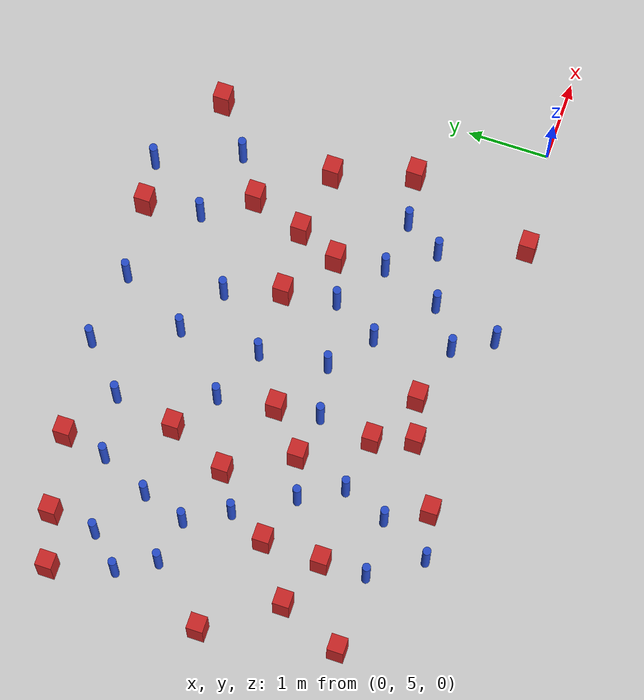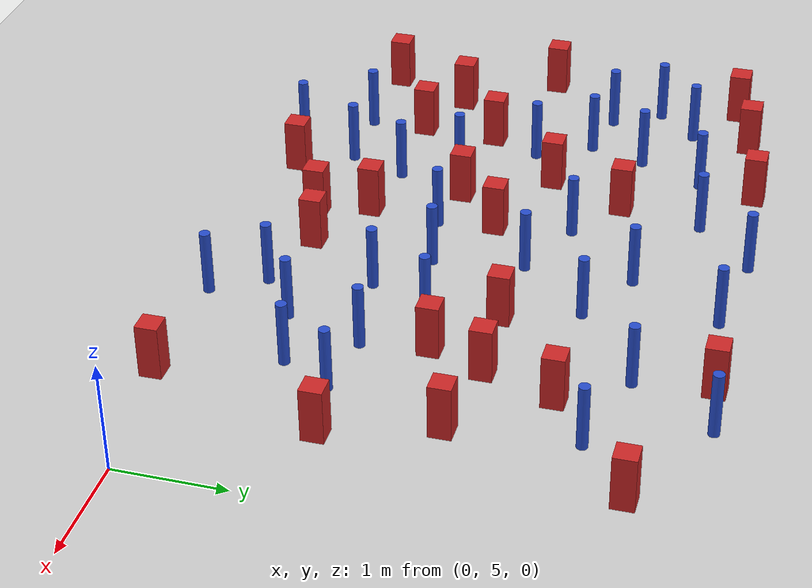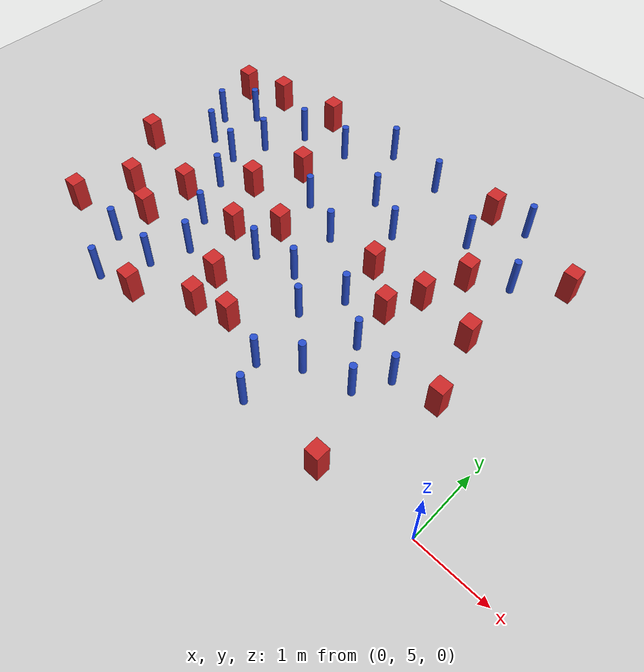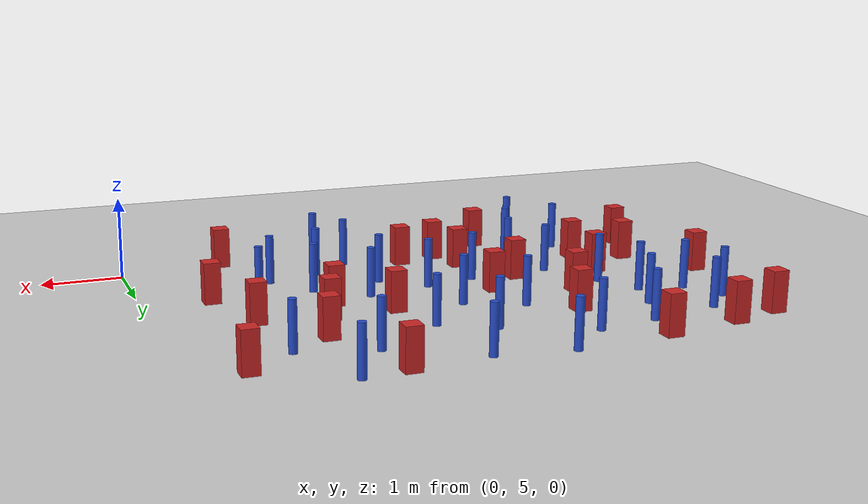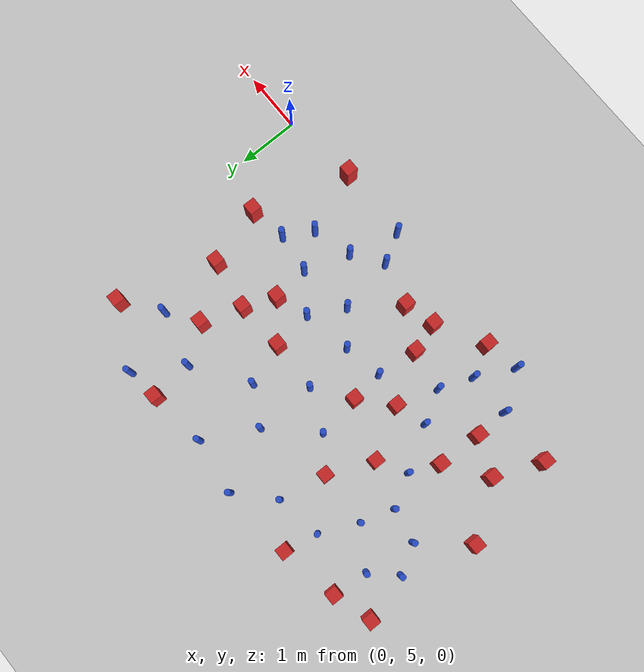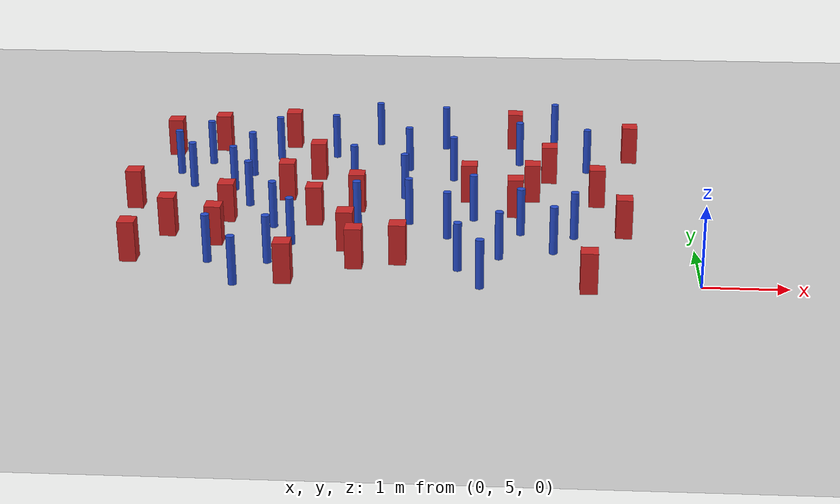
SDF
<sdf version="1.6">
 <world name="default">
  <model name="ground_plane">
   <static>1</static>
   <link name="link">
    <collision name="collision">
     <geometry><plane><normal>0 0 1</normal><size>100 100</size></plane></geometry>
     <surface><friction><ode><mu>100</mu><mu2>50</mu2></ode></friction></surface>
    </collision>
    <visual name="visual">
     <cast_shadows>0</cast_shadows>
     <geometry><plane><normal>0 0 1</normal><size>100 100</size></plane></geometry>
     <material>
      <ambient>1.0 1.0 1.0 1.0</ambient>
      <diffuse>0.8 0.8 0.8 1.0</diffuse>
      <specular>0.01 0.01 0.01 1.000000</specular>
     </material>
    </visual>
   </link>
  </model>
  <model name="square_post_obstacle4">
   <static>true</static>
   <pose>-1.7228530405 8.17220741166 1.91545236811e-07 -7.35059704564e-06 1.12565212e-07 2.39332434364e-05</pose>
   <link name="link">
    <pose>0 0 0.25 0 -0 0</pose>
    <inertial>
     <mass>100</mass>
     <inertia>
      <ixx>0.166667</ixx>
      <ixy>0</ixy>
      <ixz>0</ixz>
      <iyy>0.166667</iyy>
      <iyz>0</iyz>
      <izz>0.166667</izz>
     </inertia>
    </inertial>
    <collision name="collision"><geometry><box><size>.2 .2 .5</size></box></geometry></collision>
    <visual name="visual">
     <geometry><box><size>.2 .2 .5</size></box></geometry>
     <material>
      <script><name>Gazebo/Red</name><uri>file://media/materials/scripts/gazebo.material</uri></script>
     </material>
    </visual>
   </link>
  </model>
  <model name="pole_obstacle17">
   <static>true</static>
   <pose>-3.45545630183 6.66428810305 7.38925637345e-09 -8.47170692794e-08 1.24976764468e-08 -1.7451309304e-07</pose>
   <link name="link">
    <pose>0 0 0.3 0 -0 0</pose>
    <inertial>
     <mass>1</mass>
     <inertia><ixx>0.145833</ixx><ixy>0</ixy><ixz>0</ixz><iyy>0.145833</iyy><iyz>0</iyz><izz>0.125</izz></inertia>
    </inertial>
    <collision name="collision">
     <geometry><cylinder><radius>0.05</radius><length>.6</length></cylinder></geometry>
    </collision>
    <visual name="visual">
     <geometry><cylinder><radius>0.05</radius><length>.6</length></cylinder></geometry>
     <material>
      <script><name>Gazebo/Blue</name><uri>file://media/materials/scripts/gazebo.material</uri></script>
     </material>
    </visual>
   </link>
  </model>
  <model name="square_post_obstacle13">
   <static>true</static>
   <pose>-6.81584707708 8.96019248602 1.91545236811e-07 -7.35059704564e-06 1.12565212e-07 2.39332434364e-05</pose>
   <link name="link">
    <pose>0 0 0.25 0 -0 0</pose>
    <inertial>
     <mass>100</mass>
     <inertia>
      <ixx>0.166667</ixx>
      <ixy>0</ixy>
      <ixz>0</ixz>
      <iyy>0.166667</iyy>
      <iyz>0</iyz>
      <izz>0.166667</izz>
     </inertia>
    </inertial>
    <collision name="collision"><geometry><box><size>.2 .2 .5</size></box></geometry></collision>
    <visual name="visual">
     <geometry><box><size>.2 .2 .5</size></box></geometry>
     <material>
      <script><name>Gazebo/Red</name><uri>file://media/materials/scripts/gazebo.material</uri></script>
     </material>
    </visual>
   </link>
  </model>
  <model name="pole_obstacle26">
   <static>true</static>
   <pose>-1.42459127281 6.32206746466 7.38925637345e-09 -8.47170692799e-08 1.24976765033e-08 -1.74513093018e-07</pose>
   <link name="link">
    <pose>0 0 0.3 0 -0 0</pose>
    <inertial>
     <mass>1</mass>
     <inertia><ixx>0.145833</ixx><ixy>0</ixy><ixz>0</ixz><iyy>0.145833</iyy><iyz>0</iyz><izz>0.125</izz></inertia>
    </inertial>
    <collision name="collision">
     <geometry><cylinder><radius>0.05</radius><length>.6</length></cylinder></geometry>
    </collision>
    <visual name="visual">
     <geometry><cylinder><radius>0.05</radius><length>.6</length></cylinder></geometry>
     <material>
      <script><name>Gazebo/Blue</name><uri>file://media/materials/scripts/gazebo.material</uri></script>
     </material>
    </visual>
   </link>
  </model>
  <model name="square_post_obstacle19">
   <static>true</static>
   <pose>-0.821396344121 6.42643061462 1.91545236811e-07 -7.35059704564e-06 1.12565212e-07 2.39332434364e-05</pose>
   <link name="link">
    <pose>0 0 0.25 0 -0 0</pose>
    <inertial>
     <mass>100</mass>
     <inertia>
      <ixx>0.166667</ixx>
      <ixy>0</ixy>
      <ixz>0</ixz>
      <iyy>0.166667</iyy>
      <iyz>0</iyz>
      <izz>0.166667</izz>
     </inertia>
    </inertial>
    <collision name="collision"><geometry><box><size>.2 .2 .5</size></box></geometry></collision>
    <visual name="visual">
     <geometry><box><size>.2 .2 .5</size></box></geometry>
     <material>
      <script><name>Gazebo/Red</name><uri>file://media/materials/scripts/gazebo.material</uri></script>
     </material>
    </visual>
   </link>
  </model>
  <model name="square_post_obstacle28">
   <static>true</static>
   <pose>-3.50459496953 5.5277414915 1.91545236811e-07 -7.35059704564e-06 1.12565212e-07 2.39332434364e-05</pose>
   <link name="link">
    <pose>0 0 0.25 0 -0 0</pose>
    <inertial>
     <mass>100</mass>
     <inertia>
      <ixx>0.166667</ixx>
      <ixy>0</ixy>
      <ixz>0</ixz>
      <iyy>0.166667</iyy>
      <iyz>0</iyz>
      <izz>0.166667</izz>
     </inertia>
    </inertial>
    <collision name="collision"><geometry><box><size>.2 .2 .5</size></box></geometry></collision>
    <visual name="visual">
     <geometry><box><size>.2 .2 .5</size></box></geometry>
     <material>
      <script><name>Gazebo/Red</name><uri>file://media/materials/scripts/gazebo.material</uri></script>
     </material>
    </visual>
   </link>
  </model>
  <model name="pole_obstacle33">
   <static>true</static>
   <pose>-2.66230238334 6.81950726783 7.38925637345e-09 -8.47170692798e-08 1.24976765033e-08 -1.74513093019e-07</pose>
   <link name="link">
    <pose>0 0 0.3 0 -0 0</pose>
    <inertial>
     <mass>1</mass>
     <inertia><ixx>0.145833</ixx><ixy>0</ixy><ixz>0</ixz><iyy>0.145833</iyy><iyz>0</iyz><izz>0.125</izz></inertia>
    </inertial>
    <collision name="collision">
     <geometry><cylinder><radius>0.05</radius><length>.6</length></cylinder></geometry>
    </collision>
    <visual name="visual">
     <geometry><cylinder><radius>0.05</radius><length>.6</length></cylinder></geometry>
     <material>
      <script><name>Gazebo/Blue</name><uri>file://media/materials/scripts/gazebo.material</uri></script>
     </material>
    </visual>
   </link>
  </model>
  <model name="pole_obstacle38">
   <static>true</static>
   <pose>-5.52483982158 7.1526593645 7.38925637345e-09 -8.47170692796e-08 1.24976764786e-08 -1.74513093032e-07</pose>
   <link name="link">
    <pose>0 0 0.3 0 -0 0</pose>
    <inertial>
     <mass>1</mass>
     <inertia><ixx>0.145833</ixx><ixy>0</ixy><ixz>0</ixz><iyy>0.145833</iyy><iyz>0</iyz><izz>0.125</izz></inertia>
    </inertial>
    <collision name="collision">
     <geometry><cylinder><radius>0.05</radius><length>.6</length></cylinder></geometry>
    </collision>
    <visual name="visual">
     <geometry><cylinder><radius>0.05</radius><length>.6</length></cylinder></geometry>
     <material>
      <script><name>Gazebo/Blue</name><uri>file://media/materials/scripts/gazebo.material</uri></script>
     </material>
    </visual>
   </link>
  </model>
  <model name="square_post_obstacle38">
   <static>true</static>
   <pose>-1.28426622738 4.8604195114 1.91545236811e-07 -7.35059704564e-06 1.12565212e-07 2.39332434364e-05</pose>
   <link name="link">
    <pose>0 0 0.25 0 -0 0</pose>
    <inertial>
     <mass>100</mass>
     <inertia>
      <ixx>0.166667</ixx>
      <ixy>0</ixy>
      <ixz>0</ixz>
      <iyy>0.166667</iyy>
      <iyz>0</iyz>
      <izz>0.166667</izz>
     </inertia>
    </inertial>
    <collision name="collision"><geometry><box><size>.2 .2 .5</size></box></geometry></collision>
    <visual name="visual">
     <geometry><box><size>.2 .2 .5</size></box></geometry>
     <material>
      <script><name>Gazebo/Red</name><uri>file://media/materials/scripts/gazebo.material</uri></script>
     </material>
    </visual>
   </link>
  </model>
  <model name="pole_obstacle54">
   <static>true</static>
   <pose>-2.97733800173 8.14151858667 7.38925637345e-09 -8.47170692793e-08 1.24976764408e-08 -1.74513093041e-07</pose>
   <link name="link">
    <pose>0 0 0.3 0 -0 0</pose>
    <inertial>
     <mass>1</mass>
     <inertia><ixx>0.145833</ixx><ixy>0</ixy><ixz>0</ixz><iyy>0.145833</iyy><iyz>0</iyz><izz>0.125</izz></inertia>
    </inertial>
    <collision name="collision">
     <geometry><cylinder><radius>0.05</radius><length>.6</length></cylinder></geometry>
    </collision>
    <visual name="visual">
     <geometry><cylinder><radius>0.05</radius><length>.6</length></cylinder></geometry>
     <material>
      <script><name>Gazebo/Blue</name><uri>file://media/materials/scripts/gazebo.material</uri></script>
     </material>
    </visual>
   </link>
  </model>
  <model name="pole_obstacle59">
   <static>true</static>
   <pose>-2.96096445457 6.25453781629 7.38925637345e-09 -8.47170692798e-08 1.24976765033e-08 -1.74513093019e-07</pose>
   <link name="link">
    <pose>0 0 0.3 0 -0 0</pose>
    <inertial>
     <mass>1</mass>
     <inertia><ixx>0.145833</ixx><ixy>0</ixy><ixz>0</ixz><iyy>0.145833</iyy><iyz>0</iyz><izz>0.125</izz></inertia>
    </inertial>
    <collision name="collision">
     <geometry><cylinder><radius>0.05</radius><length>.6</length></cylinder></geometry>
    </collision>
    <visual name="visual">
     <geometry><cylinder><radius>0.05</radius><length>.6</length></cylinder></geometry>
     <material>
      <script><name>Gazebo/Blue</name><uri>file://media/materials/scripts/gazebo.material</uri></script>
     </material>
    </visual>
   </link>
  </model>
  <model name="pole_obstacle64">
   <static>true</static>
   <pose>-5.11754043893 6.48112355918 7.38925637345e-09 -8.47170692796e-08 1.24976764786e-08 -1.74513093032e-07</pose>
   <link name="link">
    <pose>0 0 0.3 0 -0 0</pose>
    <inertial>
     <mass>1</mass>
     <inertia><ixx>0.145833</ixx><ixy>0</ixy><ixz>0</ixz><iyy>0.145833</iyy><iyz>0</iyz><izz>0.125</izz></inertia>
    </inertial>
    <collision name="collision">
     <geometry><cylinder><radius>0.05</radius><length>.6</length></cylinder></geometry>
    </collision>
    <visual name="visual">
     <geometry><cylinder><radius>0.05</radius><length>.6</length></cylinder></geometry>
     <material>
      <script><name>Gazebo/Blue</name><uri>file://media/materials/scripts/gazebo.material</uri></script>
     </material>
    </visual>
   </link>
  </model>
  <model name="pole_obstacle68">
   <static>true</static>
   <pose>-5.03636740687 5.43750752926 7.38925637345e-09 -8.47170692796e-08 1.24976764786e-08 -1.74513093032e-07</pose>
   <link name="link">
    <pose>0 0 0.3 0 -0 0</pose>
    <inertial>
     <mass>1</mass>
     <inertia><ixx>0.145833</ixx><ixy>0</ixy><ixz>0</ixz><iyy>0.145833</iyy><iyz>0</iyz><izz>0.125</izz></inertia>
    </inertial>
    <collision name="collision">
     <geometry><cylinder><radius>0.05</radius><length>.6</length></cylinder></geometry>
    </collision>
    <visual name="visual">
     <geometry><cylinder><radius>0.05</radius><length>.6</length></cylinder></geometry>
     <material>
      <script><name>Gazebo/Blue</name><uri>file://media/materials/scripts/gazebo.material</uri></script>
     </material>
    </visual>
   </link>
  </model>
  <model name="square_post_obstacle51">
   <static>true</static>
   <pose>-0.642570770435 8.95882077669 1.91545236811e-07 -7.35059704564e-06 1.12565212e-07 2.39332434364e-05</pose>
   <link name="link">
    <pose>0 0 0.25 0 -0 0</pose>
    <inertial>
     <mass>100</mass>
     <inertia>
      <ixx>0.166667</ixx>
      <ixy>0</ixy>
      <ixz>0</ixz>
      <iyy>0.166667</iyy>
      <iyz>0</iyz>
      <izz>0.166667</izz>
     </inertia>
    </inertial>
    <collision name="collision"><geometry><box><size>.2 .2 .5</size></box></geometry></collision>
    <visual name="visual">
     <geometry><box><size>.2 .2 .5</size></box></geometry>
     <material>
      <script><name>Gazebo/Red</name><uri>file://media/materials/scripts/gazebo.material</uri></script>
     </material>
    </visual>
   </link>
  </model>
  <model name="square_post_obstacle54">
   <static>true</static>
   <pose>-2.74522304164 7.46933086073 1.91545236811e-07 -7.35059704564e-06 1.12565212e-07 2.39332434364e-05</pose>
   <link name="link">
    <pose>0 0 0.25 0 -0 0</pose>
    <inertial>
     <mass>100</mass>
     <inertia>
      <ixx>0.166667</ixx>
      <ixy>0</ixy>
      <ixz>0</ixz>
      <iyy>0.166667</iyy>
      <iyz>0</iyz>
      <izz>0.166667</izz>
     </inertia>
    </inertial>
    <collision name="collision"><geometry><box><size>.2 .2 .5</size></box></geometry></collision>
    <visual name="visual">
     <geometry><box><size>.2 .2 .5</size></box></geometry>
     <material>
      <script><name>Gazebo/Red</name><uri>file://media/materials/scripts/gazebo.material</uri></script>
     </material>
    </visual>
   </link>
  </model>
  <model name="square_post_obstacle60">
   <static>true</static>
   <pose>-4.75649983137 8.14834760686 1.91545236811e-07 -7.35059704564e-06 1.12565212e-07 2.39332434364e-05</pose>
   <link name="link">
    <pose>0 0 0.25 0 -0 0</pose>
    <inertial>
     <mass>100</mass>
     <inertia>
      <ixx>0.166667</ixx>
      <ixy>0</ixy>
      <ixz>0</ixz>
      <iyy>0.166667</iyy>
      <iyz>0</iyz>
      <izz>0.166667</izz>
     </inertia>
    </inertial>
    <collision name="collision"><geometry><box><size>.2 .2 .5</size></box></geometry></collision>
    <visual name="visual">
     <geometry><box><size>.2 .2 .5</size></box></geometry>
     <material>
      <script><name>Gazebo/Red</name><uri>file://media/materials/scripts/gazebo.material</uri></script>
     </material>
    </visual>
   </link>
  </model>
  <model name="pole_obstacle71">
   <static>true</static>
   <pose>-2.51953963286 4.87381141419 7.38925637345e-09 -8.47170692798e-08 1.24976765033e-08 -1.74513093019e-07</pose>
   <link name="link">
    <pose>0 0 0.3 0 -0 0</pose>
    <inertial>
     <mass>1</mass>
     <inertia><ixx>0.145833</ixx><ixy>0</ixy><ixz>0</ixz><iyy>0.145833</iyy><iyz>0</iyz><izz>0.125</izz></inertia>
    </inertial>
    <collision name="collision">
     <geometry><cylinder><radius>0.05</radius><length>.6</length></cylinder></geometry>
    </collision>
    <visual name="visual">
     <geometry><cylinder><radius>0.05</radius><length>.6</length></cylinder></geometry>
     <material>
      <script><name>Gazebo/Blue</name><uri>file://media/materials/scripts/gazebo.material</uri></script>
     </material>
    </visual>
   </link>
  </model>
  <model name="square_post_obstacle62">
   <static>true</static>
   <pose>-5.7246895634 6.69212594619 1.91545236811e-07 -7.35059704564e-06 1.12565212e-07 2.39332434364e-05</pose>
   <link name="link">
    <pose>0 0 0.25 0 -0 0</pose>
    <inertial>
     <mass>100</mass>
     <inertia>
      <ixx>0.166667</ixx>
      <ixy>0</ixy>
      <ixz>0</ixz>
      <iyy>0.166667</iyy>
      <iyz>0</iyz>
      <izz>0.166667</izz>
     </inertia>
    </inertial>
    <collision name="collision"><geometry><box><size>.2 .2 .5</size></box></geometry></collision>
    <visual name="visual">
     <geometry><box><size>.2 .2 .5</size></box></geometry>
     <material>
      <script><name>Gazebo/Red</name><uri>file://media/materials/scripts/gazebo.material</uri></script>
     </material>
    </visual>
   </link>
  </model>
  <model name="pole_obstacle73">
   <static>true</static>
   <pose>-4.05500292199 9.43750154544 7.38925637345e-09 -8.471706928e-08 1.24976765081e-08 -1.74513093015e-07</pose>
   <link name="link">
    <pose>0 0 0.3 0 -0 0</pose>
    <inertial>
     <mass>1</mass>
     <inertia><ixx>0.145833</ixx><ixy>0</ixy><ixz>0</ixz><iyy>0.145833</iyy><iyz>0</iyz><izz>0.125</izz></inertia>
    </inertial>
    <collision name="collision">
     <geometry><cylinder><radius>0.05</radius><length>.6</length></cylinder></geometry>
    </collision>
    <visual name="visual">
     <geometry><cylinder><radius>0.05</radius><length>.6</length></cylinder></geometry>
     <material>
      <script><name>Gazebo/Blue</name><uri>file://media/materials/scripts/gazebo.material</uri></script>
     </material>
    </visual>
   </link>
  </model>
  <model name="pole_obstacle79">
   <static>true</static>
   <pose>-5.3608389748 8.79041969187 7.38925637345e-09 -8.471706928e-08 1.24976765081e-08 -1.74513093015e-07</pose>
   <link name="link">
    <pose>0 0 0.3 0 -0 0</pose>
    <inertial>
     <mass>1</mass>
     <inertia><ixx>0.145833</ixx><ixy>0</ixy><ixz>0</ixz><iyy>0.145833</iyy><iyz>0</iyz><izz>0.125</izz></inertia>
    </inertial>
    <collision name="collision">
     <geometry><cylinder><radius>0.05</radius><length>.6</length></cylinder></geometry>
    </collision>
    <visual name="visual">
     <geometry><cylinder><radius>0.05</radius><length>.6</length></cylinder></geometry>
     <material>
      <script><name>Gazebo/Blue</name><uri>file://media/materials/scripts/gazebo.material</uri></script>
     </material>
    </visual>
   </link>
  </model>
  <model name="square_post_obstacle88">
   <static>true</static>
   <pose>-4.14101319104 7.07830304073 1.91545236811e-07 -7.35059704564e-06 1.12565212e-07 2.39332434364e-05</pose>
   <link name="link">
    <pose>0 0 0.25 0 -0 0</pose>
    <inertial>
     <mass>100</mass>
     <inertia>
      <ixx>0.166667</ixx>
      <ixy>0</ixy>
      <ixz>0</ixz>
      <iyy>0.166667</iyy>
      <iyz>0</iyz>
      <izz>0.166667</izz>
     </inertia>
    </inertial>
    <collision name="collision"><geometry><box><size>.2 .2 .5</size></box></geometry></collision>
    <visual name="visual">
     <geometry><box><size>.2 .2 .5</size></box></geometry>
     <material>
      <script><name>Gazebo/Red</name><uri>file://media/materials/scripts/gazebo.material</uri></script>
     </material>
    </visual>
   </link>
  </model>
  <model name="pole_obstacle103">
   <static>true</static>
   <pose>-2.11839803121 8.73889166792 7.38925637345e-09 -8.47170692793e-08 1.24976764408e-08 -1.74513093041e-07</pose>
   <link name="link">
    <pose>0 0 0.3 0 -0 0</pose>
    <inertial>
     <mass>1</mass>
     <inertia><ixx>0.145833</ixx><ixy>0</ixy><ixz>0</ixz><iyy>0.145833</iyy><iyz>0</iyz><izz>0.125</izz></inertia>
    </inertial>
    <collision name="collision">
     <geometry><cylinder><radius>0.05</radius><length>.6</length></cylinder></geometry>
    </collision>
    <visual name="visual">
     <geometry><cylinder><radius>0.05</radius><length>.6</length></cylinder></geometry>
     <material>
      <script><name>Gazebo/Blue</name><uri>file://media/materials/scripts/gazebo.material</uri></script>
     </material>
    </visual>
   </link>
  </model>
  <model name="square_post_obstacle99">
   <static>true</static>
   <pose>-4.00716939597 5.39353231033 1.91545236811e-07 -7.35059704564e-06 1.12565212e-07 2.39332434364e-05</pose>
   <link name="link">
    <pose>0 0 0.25 0 -0 0</pose>
    <inertial>
     <mass>100</mass>
     <inertia>
      <ixx>0.166667</ixx>
      <ixy>0</ixy>
      <ixz>0</ixz>
      <iyy>0.166667</iyy>
      <iyz>0</iyz>
      <izz>0.166667</izz>
     </inertia>
    </inertial>
    <collision name="collision"><geometry><box><size>.2 .2 .5</size></box></geometry></collision>
    <visual name="visual">
     <geometry><box><size>.2 .2 .5</size></box></geometry>
     <material>
      <script><name>Gazebo/Red</name><uri>file://media/materials/scripts/gazebo.material</uri></script>
     </material>
    </visual>
   </link>
  </model>
  <model name="pole_obstacle104">
   <static>true</static>
   <pose>-1.22256996855 8.50922935559 7.38925637345e-09 -8.47170692798e-08 1.24976764881e-08 -1.74513093027e-07</pose>
   <link name="link">
    <pose>0 0 0.3 0 -0 0</pose>
    <inertial>
     <mass>1</mass>
     <inertia><ixx>0.145833</ixx><ixy>0</ixy><ixz>0</ixz><iyy>0.145833</iyy><iyz>0</iyz><izz>0.125</izz></inertia>
    </inertial>
    <collision name="collision">
     <geometry><cylinder><radius>0.05</radius><length>.6</length></cylinder></geometry>
    </collision>
    <visual name="visual">
     <geometry><cylinder><radius>0.05</radius><length>.6</length></cylinder></geometry>
     <material>
      <script><name>Gazebo/Blue</name><uri>file://media/materials/scripts/gazebo.material</uri></script>
     </material>
    </visual>
   </link>
  </model>
  <model name="pole_obstacle105">
   <static>true</static>
   <pose>-3.14019684714 9.31271577675 7.38925637345e-09 -8.47170692793e-08 1.24976764408e-08 -1.74513093041e-07</pose>
   <link name="link">
    <pose>0 0 0.3 0 -0 0</pose>
    <inertial>
     <mass>1</mass>
     <inertia><ixx>0.145833</ixx><ixy>0</ixy><ixz>0</ixz><iyy>0.145833</iyy><iyz>0</iyz><izz>0.125</izz></inertia>
    </inertial>
    <collision name="collision">
     <geometry><cylinder><radius>0.05</radius><length>.6</length></cylinder></geometry>
    </collision>
    <visual name="visual">
     <geometry><cylinder><radius>0.05</radius><length>.6</length></cylinder></geometry>
     <material>
      <script><name>Gazebo/Blue</name><uri>file://media/materials/scripts/gazebo.material</uri></script>
     </material>
    </visual>
   </link>
  </model>
  <model name="square_post_obstacle104">
   <static>true</static>
   <pose>-6.95942787793 7.06242237203 1.91545236811e-07 -7.35059704564e-06 1.12565212e-07 2.39332434364e-05</pose>
   <link name="link">
    <pose>0 0 0.25 0 -0 0</pose>
    <inertial>
     <mass>100</mass>
     <inertia>
      <ixx>0.166667</ixx>
      <ixy>0</ixy>
      <ixz>0</ixz>
      <iyy>0.166667</iyy>
      <iyz>0</iyz>
      <izz>0.166667</izz>
     </inertia>
    </inertial>
    <collision name="collision"><geometry><box><size>.2 .2 .5</size></box></geometry></collision>
    <visual name="visual">
     <geometry><box><size>.2 .2 .5</size></box></geometry>
     <material>
      <script><name>Gazebo/Red</name><uri>file://media/materials/scripts/gazebo.material</uri></script>
     </material>
    </visual>
   </link>
  </model>
  <model name="pole_obstacle111">
   <static>true</static>
   <pose>-4.24816655339 7.78083860626 7.38925637345e-09 -8.47170692796e-08 1.24976764786e-08 -1.74513093032e-07</pose>
   <link name="link">
    <pose>0 0 0.3 0 -0 0</pose>
    <inertial>
     <mass>1</mass>
     <inertia><ixx>0.145833</ixx><ixy>0</ixy><ixz>0</ixz><iyy>0.145833</iyy><iyz>0</iyz><izz>0.125</izz></inertia>
    </inertial>
    <collision name="collision">
     <geometry><cylinder><radius>0.05</radius><length>.6</length></cylinder></geometry>
    </collision>
    <visual name="visual">
     <geometry><cylinder><radius>0.05</radius><length>.6</length></cylinder></geometry>
     <material>
      <script><name>Gazebo/Blue</name><uri>file://media/materials/scripts/gazebo.material</uri></script>
     </material>
    </visual>
   </link>
  </model>
  <model name="square_post_obstacle113">
   <static>true</static>
   <pose>-4.77679507834 4.95509098481 1.91545236811e-07 -7.35059704564e-06 1.12565212e-07 2.39332434364e-05</pose>
   <link name="link">
    <pose>0 0 0.25 0 -0 0</pose>
    <inertial>
     <mass>100</mass>
     <inertia>
      <ixx>0.166667</ixx>
      <ixy>0</ixy>
      <ixz>0</ixz>
      <iyy>0.166667</iyy>
      <iyz>0</iyz>
      <izz>0.166667</izz>
     </inertia>
    </inertial>
    <collision name="collision"><geometry><box><size>.2 .2 .5</size></box></geometry></collision>
    <visual name="visual">
     <geometry><box><size>.2 .2 .5</size></box></geometry>
     <material>
      <script><name>Gazebo/Red</name><uri>file://media/materials/scripts/gazebo.material</uri></script>
     </material>
    </visual>
   </link>
  </model>
  <model name="pole_obstacle117">
   <static>true</static>
   <pose>-1.64648015821 9.49421220998 7.38925637345e-09 -8.47170692798e-08 1.24976764881e-08 -1.74513093027e-07</pose>
   <link name="link">
    <pose>0 0 0.3 0 -0 0</pose>
    <inertial>
     <mass>1</mass>
     <inertia><ixx>0.145833</ixx><ixy>0</ixy><ixz>0</ixz><iyy>0.145833</iyy><iyz>0</iyz><izz>0.125</izz></inertia>
    </inertial>
    <collision name="collision">
     <geometry><cylinder><radius>0.05</radius><length>.6</length></cylinder></geometry>
    </collision>
    <visual name="visual">
     <geometry><cylinder><radius>0.05</radius><length>.6</length></cylinder></geometry>
     <material>
      <script><name>Gazebo/Blue</name><uri>file://media/materials/scripts/gazebo.material</uri></script>
     </material>
    </visual>
   </link>
  </model>
  <model name="pole_obstacle128">
   <static>true</static>
   <pose>-2.32021772974 5.67991072781 7.38925637345e-09 -8.47170692798e-08 1.24976765033e-08 -1.74513093019e-07</pose>
   <link name="link">
    <pose>0 0 0.3 0 -0 0</pose>
    <inertial>
     <mass>1</mass>
     <inertia><ixx>0.145833</ixx><ixy>0</ixy><ixz>0</ixz><iyy>0.145833</iyy><iyz>0</iyz><izz>0.125</izz></inertia>
    </inertial>
    <collision name="collision">
     <geometry><cylinder><radius>0.05</radius><length>.6</length></cylinder></geometry>
    </collision>
    <visual name="visual">
     <geometry><cylinder><radius>0.05</radius><length>.6</length></cylinder></geometry>
     <material>
      <script><name>Gazebo/Blue</name><uri>file://media/materials/scripts/gazebo.material</uri></script>
     </material>
    </visual>
   </link>
  </model>
  <model name="pole_obstacle131">
   <static>true</static>
   <pose>-2.7924716195 5.33730707047 7.38925637345e-09 -8.47170692798e-08 1.24976765033e-08 -1.74513093019e-07</pose>
   <link name="link">
    <pose>0 0 0.3 0 -0 0</pose>
    <inertial>
     <mass>1</mass>
     <inertia><ixx>0.145833</ixx><ixy>0</ixy><ixz>0</ixz><iyy>0.145833</iyy><iyz>0</iyz><izz>0.125</izz></inertia>
    </inertial>
    <collision name="collision">
     <geometry><cylinder><radius>0.05</radius><length>.6</length></cylinder></geometry>
    </collision>
    <visual name="visual">
     <geometry><cylinder><radius>0.05</radius><length>.6</length></cylinder></geometry>
     <material>
      <script><name>Gazebo/Blue</name><uri>file://media/materials/scripts/gazebo.material</uri></script>
     </material>
    </visual>
   </link>
  </model>
  <model name="square_post_obstacle129">
   <static>true</static>
   <pose>-6.36824734647 6.22308009176 1.91545236811e-07 -7.35059704564e-06 1.12565212e-07 2.39332434364e-05</pose>
   <link name="link">
    <pose>0 0 0.25 0 -0 0</pose>
    <inertial>
     <mass>100</mass>
     <inertia>
      <ixx>0.166667</ixx>
      <ixy>0</ixy>
      <ixz>0</ixz>
      <iyy>0.166667</iyy>
      <iyz>0</iyz>
      <izz>0.166667</izz>
     </inertia>
    </inertial>
    <collision name="collision"><geometry><box><size>.2 .2 .5</size></box></geometry></collision>
    <visual name="visual">
     <geometry><box><size>.2 .2 .5</size></box></geometry>
     <material>
      <script><name>Gazebo/Red</name><uri>file://media/materials/scripts/gazebo.material</uri></script>
     </material>
    </visual>
   </link>
  </model>
  <model name="square_post_obstacle141">
   <static>true</static>
   <pose>-1.94130491127 7.51752611965 1.91545236811e-07 -7.35059704564e-06 1.12565212e-07 2.39332434364e-05</pose>
   <link name="link">
    <pose>0 0 0.25 0 -0 0</pose>
    <inertial>
     <mass>100</mass>
     <inertia>
      <ixx>0.166667</ixx>
      <ixy>0</ixy>
      <ixz>0</ixz>
      <iyy>0.166667</iyy>
      <iyz>0</iyz>
      <izz>0.166667</izz>
     </inertia>
    </inertial>
    <collision name="collision"><geometry><box><size>.2 .2 .5</size></box></geometry></collision>
    <visual name="visual">
     <geometry><box><size>.2 .2 .5</size></box></geometry>
     <material>
      <script><name>Gazebo/Red</name><uri>file://media/materials/scripts/gazebo.material</uri></script>
     </material>
    </visual>
   </link>
  </model>
  <model name="pole_obstacle149">
   <static>true</static>
   <pose>-4.61305406385 8.9139836378 7.38925637345e-09 -8.471706928e-08 1.24976765081e-08 -1.74513093015e-07</pose>
   <link name="link">
    <pose>0 0 0.3 0 -0 0</pose>
    <inertial>
     <mass>1</mass>
     <inertia><ixx>0.145833</ixx><ixy>0</ixy><ixz>0</ixz><iyy>0.145833</iyy><iyz>0</iyz><izz>0.125</izz></inertia>
    </inertial>
    <collision name="collision">
     <geometry><cylinder><radius>0.05</radius><length>.6</length></cylinder></geometry>
    </collision>
    <visual name="visual">
     <geometry><cylinder><radius>0.05</radius><length>.6</length></cylinder></geometry>
     <material>
      <script><name>Gazebo/Blue</name><uri>file://media/materials/scripts/gazebo.material</uri></script>
     </material>
    </visual>
   </link>
  </model>
  <model name="square_post_obstacle149">
   <static>true</static>
   <pose>-5.75304478414 5.97259973843 1.91545236811e-07 -7.35059704564e-06 1.12565212e-07 2.39332434364e-05</pose>
   <link name="link">
    <pose>0 0 0.25 0 -0 0</pose>
    <inertial>
     <mass>100</mass>
     <inertia>
      <ixx>0.166667</ixx>
      <ixy>0</ixy>
      <ixz>0</ixz>
      <iyy>0.166667</iyy>
      <iyz>0</iyz>
      <izz>0.166667</izz>
     </inertia>
    </inertial>
    <collision name="collision"><geometry><box><size>.2 .2 .5</size></box></geometry></collision>
    <visual name="visual">
     <geometry><box><size>.2 .2 .5</size></box></geometry>
     <material>
      <script><name>Gazebo/Red</name><uri>file://media/materials/scripts/gazebo.material</uri></script>
     </material>
    </visual>
   </link>
  </model>
  <model name="pole_obstacle153">
   <static>true</static>
   <pose>-6.61904613542 8.21037295926 7.38925637345e-09 -8.471706928e-08 1.24976765081e-08 -1.74513093015e-07</pose>
   <link name="link">
    <pose>0 0 0.3 0 -0 0</pose>
    <inertial>
     <mass>1</mass>
     <inertia><ixx>0.145833</ixx><ixy>0</ixy><ixz>0</ixz><iyy>0.145833</iyy><iyz>0</iyz><izz>0.125</izz></inertia>
    </inertial>
    <collision name="collision">
     <geometry><cylinder><radius>0.05</radius><length>.6</length></cylinder></geometry>
    </collision>
    <visual name="visual">
     <geometry><cylinder><radius>0.05</radius><length>.6</length></cylinder></geometry>
     <material>
      <script><name>Gazebo/Blue</name><uri>file://media/materials/scripts/gazebo.material</uri></script>
     </material>
    </visual>
   </link>
  </model>
  <model name="pole_obstacle154">
   <static>true</static>
   <pose>-1.67817559306 5.86618983934 7.38925637345e-09 -8.47170692799e-08 1.24976765033e-08 -1.74513093018e-07</pose>
   <link name="link">
    <pose>0 0 0.3 0 -0 0</pose>
    <inertial>
     <mass>1</mass>
     <inertia><ixx>0.145833</ixx><ixy>0</ixy><ixz>0</ixz><iyy>0.145833</iyy><iyz>0</iyz><izz>0.125</izz></inertia>
    </inertial>
    <collision name="collision">
     <geometry><cylinder><radius>0.05</radius><length>.6</length></cylinder></geometry>
    </collision>
    <visual name="visual">
     <geometry><cylinder><radius>0.05</radius><length>.6</length></cylinder></geometry>
     <material>
      <script><name>Gazebo/Blue</name><uri>file://media/materials/scripts/gazebo.material</uri></script>
     </material>
    </visual>
   </link>
  </model>
  <model name="square_post_obstacle151">
   <static>true</static>
   <pose>-6.67901263395 5.45932519691 1.91545236811e-07 -7.35059704564e-06 1.12565212e-07 2.39332434364e-05</pose>
   <link name="link">
    <pose>0 0 0.25 0 -0 0</pose>
    <inertial>
     <mass>100</mass>
     <inertia>
      <ixx>0.166667</ixx>
      <ixy>0</ixy>
      <ixz>0</ixz>
      <iyy>0.166667</iyy>
      <iyz>0</iyz>
      <izz>0.166667</izz>
     </inertia>
    </inertial>
    <collision name="collision"><geometry><box><size>.2 .2 .5</size></box></geometry></collision>
    <visual name="visual">
     <geometry><box><size>.2 .2 .5</size></box></geometry>
     <material>
      <script><name>Gazebo/Red</name><uri>file://media/materials/scripts/gazebo.material</uri></script>
     </material>
    </visual>
   </link>
  </model>
  <model name="pole_obstacle165">
   <static>true</static>
   <pose>-6.3587974429 7.76310651013 7.38925637345e-09 -8.47170692796e-08 1.24976764786e-08 -1.74513093032e-07</pose>
   <link name="link">
    <pose>0 0 0.3 0 -0 0</pose>
    <inertial>
     <mass>1</mass>
     <inertia><ixx>0.145833</ixx><ixy>0</ixy><ixz>0</ixz><iyy>0.145833</iyy><iyz>0</iyz><izz>0.125</izz></inertia>
    </inertial>
    <collision name="collision">
     <geometry><cylinder><radius>0.05</radius><length>.6</length></cylinder></geometry>
    </collision>
    <visual name="visual">
     <geometry><cylinder><radius>0.05</radius><length>.6</length></cylinder></geometry>
     <material>
      <script><name>Gazebo/Blue</name><uri>file://media/materials/scripts/gazebo.material</uri></script>
     </material>
    </visual>
   </link>
  </model>
  <model name="square_post_obstacle163">
   <static>true</static>
   <pose>-5.06967839574 7.42364494006 1.91545236811e-07 -7.35059704564e-06 1.12565212e-07 2.39332434364e-05</pose>
   <link name="link">
    <pose>0 0 0.25 0 -0 0</pose>
    <inertial>
     <mass>100</mass>
     <inertia>
      <ixx>0.166667</ixx>
      <ixy>0</ixy>
      <ixz>0</ixz>
      <iyy>0.166667</iyy>
      <iyz>0</iyz>
      <izz>0.166667</izz>
     </inertia>
    </inertial>
    <collision name="collision"><geometry><box><size>.2 .2 .5</size></box></geometry></collision>
    <visual name="visual">
     <geometry><box><size>.2 .2 .5</size></box></geometry>
     <material>
      <script><name>Gazebo/Red</name><uri>file://media/materials/scripts/gazebo.material</uri></script>
     </material>
    </visual>
   </link>
  </model>
  <model name="pole_obstacle167">
   <static>true</static>
   <pose>-4.0855546315 6.5438590245 7.38925637345e-09 -8.47170692796e-08 1.24976764786e-08 -1.74513093032e-07</pose>
   <link name="link">
    <pose>0 0 0.3 0 -0 0</pose>
    <inertial>
     <mass>1</mass>
     <inertia><ixx>0.145833</ixx><ixy>0</ixy><ixz>0</ixz><iyy>0.145833</iyy><iyz>0</iyz><izz>0.125</izz></inertia>
    </inertial>
    <collision name="collision">
     <geometry><cylinder><radius>0.05</radius><length>.6</length></cylinder></geometry>
    </collision>
    <visual name="visual">
     <geometry><cylinder><radius>0.05</radius><length>.6</length></cylinder></geometry>
     <material>
      <script><name>Gazebo/Blue</name><uri>file://media/materials/scripts/gazebo.material</uri></script>
     </material>
    </visual>
   </link>
  </model>
  <model name="square_post_obstacle180">
   <static>true</static>
   <pose>-5.24549457326 9.32475183295 1.91545236811e-07 -7.35059704564e-06 1.12565212e-07 2.39332434364e-05</pose>
   <link name="link">
    <pose>0 0 0.25 0 -0 0</pose>
    <inertial>
     <mass>100</mass>
     <inertia>
      <ixx>0.166667</ixx>
      <ixy>0</ixy>
      <ixz>0</ixz>
      <iyy>0.166667</iyy>
      <iyz>0</iyz>
      <izz>0.166667</izz>
     </inertia>
    </inertial>
    <collision name="collision"><geometry><box><size>.2 .2 .5</size></box></geometry></collision>
    <visual name="visual">
     <geometry><box><size>.2 .2 .5</size></box></geometry>
     <material>
      <script><name>Gazebo/Red</name><uri>file://media/materials/scripts/gazebo.material</uri></script>
     </material>
    </visual>
   </link>
  </model>
  <model name="pole_obstacle181">
   <static>true</static>
   <pose>-6.25987703267 8.58584738126 7.38925637345e-09 -8.471706928e-08 1.24976765081e-08 -1.74513093015e-07</pose>
   <link name="link">
    <pose>0 0 0.3 0 -0 0</pose>
    <inertial>
     <mass>1</mass>
     <inertia><ixx>0.145833</ixx><ixy>0</ixy><ixz>0</ixz><iyy>0.145833</iyy><iyz>0</iyz><izz>0.125</izz></inertia>
    </inertial>
    <collision name="collision">
     <geometry><cylinder><radius>0.05</radius><length>.6</length></cylinder></geometry>
    </collision>
    <visual name="visual">
     <geometry><cylinder><radius>0.05</radius><length>.6</length></cylinder></geometry>
     <material>
      <script><name>Gazebo/Blue</name><uri>file://media/materials/scripts/gazebo.material</uri></script>
     </material>
    </visual>
   </link>
  </model>
  <model name="square_post_obstacle184">
   <static>true</static>
   <pose>-4.62413871388 6.64277733354 1.91545236811e-07 -7.35059704564e-06 1.12565212e-07 2.39332434364e-05</pose>
   <link name="link">
    <pose>0 0 0.25 0 -0 0</pose>
    <inertial>
     <mass>100</mass>
     <inertia>
      <ixx>0.166667</ixx>
      <ixy>0</ixy>
      <ixz>0</ixz>
      <iyy>0.166667</iyy>
      <iyz>0</iyz>
      <izz>0.166667</izz>
     </inertia>
    </inertial>
    <collision name="collision"><geometry><box><size>.2 .2 .5</size></box></geometry></collision>
    <visual name="visual">
     <geometry><box><size>.2 .2 .5</size></box></geometry>
     <material>
      <script><name>Gazebo/Red</name><uri>file://media/materials/scripts/gazebo.material</uri></script>
     </material>
    </visual>
   </link>
  </model>
  <model name="pole_obstacle188">
   <static>true</static>
   <pose>-5.80600064489 7.66030317121 7.38925637345e-09 -8.47170692796e-08 1.24976764786e-08 -1.74513093032e-07</pose>
   <link name="link">
    <pose>0 0 0.3 0 -0 0</pose>
    <inertial>
     <mass>1</mass>
     <inertia><ixx>0.145833</ixx><ixy>0</ixy><ixz>0</ixz><iyy>0.145833</iyy><iyz>0</iyz><izz>0.125</izz></inertia>
    </inertial>
    <collision name="collision">
     <geometry><cylinder><radius>0.05</radius><length>.6</length></cylinder></geometry>
    </collision>
    <visual name="visual">
     <geometry><cylinder><radius>0.05</radius><length>.6</length></cylinder></geometry>
     <material>
      <script><name>Gazebo/Blue</name><uri>file://media/materials/scripts/gazebo.material</uri></script>
     </material>
    </visual>
   </link>
  </model>
  <model name="square_post_obstacle198">
   <static>true</static>
   <pose>-1.12152274715 7.39185763747 1.91545236811e-07 -7.35059704564e-06 1.12565212e-07 2.39332434364e-05</pose>
   <link name="link">
    <pose>0 0 0.25 0 -0 0</pose>
    <inertial>
     <mass>100</mass>
     <inertia>
      <ixx>0.166667</ixx>
      <ixy>0</ixy>
      <ixz>0</ixz>
      <iyy>0.166667</iyy>
      <iyz>0</iyz>
      <izz>0.166667</izz>
     </inertia>
    </inertial>
    <collision name="collision"><geometry><box><size>.2 .2 .5</size></box></geometry></collision>
    <visual name="visual">
     <geometry><box><size>.2 .2 .5</size></box></geometry>
     <material>
      <script><name>Gazebo/Red</name><uri>file://media/materials/scripts/gazebo.material</uri></script>
     </material>
    </visual>
   </link>
  </model>
  <model name="square_post_obstacle199">
   <static>true</static>
   <pose>-2.19125214374 9.4207945062 1.91545236811e-07 -7.35059704564e-06 1.12565212e-07 2.39332434364e-05</pose>
   <link name="link">
    <pose>0 0 0.25 0 -0 0</pose>
    <inertial>
     <mass>100</mass>
     <inertia>
      <ixx>0.166667</ixx>
      <ixy>0</ixy>
      <ixz>0</ixz>
      <iyy>0.166667</iyy>
      <iyz>0</iyz>
      <izz>0.166667</izz>
     </inertia>
    </inertial>
    <collision name="collision"><geometry><box><size>.2 .2 .5</size></box></geometry></collision>
    <visual name="visual">
     <geometry><box><size>.2 .2 .5</size></box></geometry>
     <material>
      <script><name>Gazebo/Red</name><uri>file://media/materials/scripts/gazebo.material</uri></script>
     </material>
    </visual>
   </link>
  </model>
  <model name="square_post_obstacle201">
   <static>true</static>
   <pose>-6.19284558899 9.1516428475 1.91545236811e-07 -7.35059704564e-06 1.12565212e-07 2.39332434364e-05</pose>
   <link name="link">
    <pose>0 0 0.25 0 -0 0</pose>
    <inertial>
     <mass>100</mass>
     <inertia>
      <ixx>0.166667</ixx>
      <ixy>0</ixy>
      <ixz>0</ixz>
      <iyy>0.166667</iyy>
      <iyz>0</iyz>
      <izz>0.166667</izz>
     </inertia>
    </inertial>
    <collision name="collision"><geometry><box><size>.2 .2 .5</size></box></geometry></collision>
    <visual name="visual">
     <geometry><box><size>.2 .2 .5</size></box></geometry>
     <material>
      <script><name>Gazebo/Red</name><uri>file://media/materials/scripts/gazebo.material</uri></script>
     </material>
    </visual>
   </link>
  </model>
  <model name="square_post_obstacle208">
   <static>true</static>
   <pose>-2.14972919256 7.00600240124 1.91545236811e-07 -7.35059704564e-06 1.12565212e-07 2.39332434364e-05</pose>
   <link name="link">
    <pose>0 0 0.25 0 -0 0</pose>
    <inertial>
     <mass>100</mass>
     <inertia>
      <ixx>0.166667</ixx>
      <ixy>0</ixy>
      <ixz>0</ixz>
      <iyy>0.166667</iyy>
      <iyz>0</iyz>
      <izz>0.166667</izz>
     </inertia>
    </inertial>
    <collision name="collision"><geometry><box><size>.2 .2 .5</size></box></geometry></collision>
    <visual name="visual">
     <geometry><box><size>.2 .2 .5</size></box></geometry>
     <material>
      <script><name>Gazebo/Red</name><uri>file://media/materials/scripts/gazebo.material</uri></script>
     </material>
    </visual>
   </link>
  </model>
  <model name="square_post_obstacle212">
   <static>true</static>
   <pose>-4.1605671346 5.88009318075 1.91545236811e-07 -7.35059704564e-06 1.12565212e-07 2.39332434364e-05</pose>
   <link name="link">
    <pose>0 0 0.25 0 -0 0</pose>
    <inertial>
     <mass>100</mass>
     <inertia>
      <ixx>0.166667</ixx>
      <ixy>0</ixy>
      <ixz>0</ixz>
      <iyy>0.166667</iyy>
      <iyz>0</iyz>
      <izz>0.166667</izz>
     </inertia>
    </inertial>
    <collision name="collision"><geometry><box><size>.2 .2 .5</size></box></geometry></collision>
    <visual name="visual">
     <geometry><box><size>.2 .2 .5</size></box></geometry>
     <material>
      <script><name>Gazebo/Red</name><uri>file://media/materials/scripts/gazebo.material</uri></script>
     </material>
    </visual>
   </link>
  </model>
  <model name="pole_obstacle216">
   <static>true</static>
   <pose>-5.74496999043 5.42365002078 7.38925637345e-09 -8.47170692796e-08 1.24976764786e-08 -1.74513093032e-07</pose>
   <link name="link">
    <pose>0 0 0.3 0 -0 0</pose>
    <inertial>
     <mass>1</mass>
     <inertia><ixx>0.145833</ixx><ixy>0</ixy><ixz>0</ixz><iyy>0.145833</iyy><iyz>0</iyz><izz>0.125</izz></inertia>
    </inertial>
    <collision name="collision">
     <geometry><cylinder><radius>0.05</radius><length>.6</length></cylinder></geometry>
    </collision>
    <visual name="visual">
     <geometry><cylinder><radius>0.05</radius><length>.6</length></cylinder></geometry>
     <material>
      <script><name>Gazebo/Blue</name><uri>file://media/materials/scripts/gazebo.material</uri></script>
     </material>
    </visual>
   </link>
  </model>
  <model name="pole_obstacle218">
   <static>true</static>
   <pose>-3.58472999043 8.47455002078 7.38925637345e-09 -8.47170692799e-08 1.24976765012e-08 -1.74513093021e-07</pose>
   <link name="link">
    <pose>0 0 0.3 0 -0 0</pose>
    <inertial>
     <mass>1</mass>
     <inertia><ixx>0.145833</ixx><ixy>0</ixy><ixz>0</ixz><iyy>0.145833</iyy><iyz>0</iyz><izz>0.125</izz></inertia>
    </inertial>
    <collision name="collision">
     <geometry><cylinder><radius>0.05</radius><length>.6</length></cylinder></geometry>
    </collision>
    <visual name="visual">
     <geometry><cylinder><radius>0.05</radius><length>.6</length></cylinder></geometry>
     <material>
      <script><name>Gazebo/Blue</name><uri>file://media/materials/scripts/gazebo.material</uri></script>
     </material>
    </visual>
   </link>
  </model>
  <model name="pole_obstacle221">
   <static>true</static>
   <pose>-2.07400999043 6.40363002078 7.38925637345e-09 -8.47170692794e-08 1.24976764468e-08 -1.7451309304e-07</pose>
   <link name="link">
    <pose>0 0 0.3 0 -0 0</pose>
    <inertial>
     <mass>1</mass>
     <inertia><ixx>0.145833</ixx><ixy>0</ixy><ixz>0</ixz><iyy>0.145833</iyy><iyz>0</iyz><izz>0.125</izz></inertia>
    </inertial>
    <collision name="collision">
     <geometry><cylinder><radius>0.05</radius><length>.6</length></cylinder></geometry>
    </collision>
    <visual name="visual">
     <geometry><cylinder><radius>0.05</radius><length>.6</length></cylinder></geometry>
     <material>
      <script><name>Gazebo/Blue</name><uri>file://media/materials/scripts/gazebo.material</uri></script>
     </material>
    </visual>
   </link>
  </model>
  <model name="pole_obstacle222">
   <static>true</static>
   <pose>-5.34185999043 4.82673002078 7.38925637345e-09 -8.47170692796e-08 1.24976764786e-08 -1.74513093032e-07</pose>
   <link name="link">
    <pose>0 0 0.3 0 -0 0</pose>
    <inertial>
     <mass>1</mass>
     <inertia><ixx>0.145833</ixx><ixy>0</ixy><ixz>0</ixz><iyy>0.145833</iyy><iyz>0</iyz><izz>0.125</izz></inertia>
    </inertial>
    <collision name="collision">
     <geometry><cylinder><radius>0.05</radius><length>.6</length></cylinder></geometry>
    </collision>
    <visual name="visual">
     <geometry><cylinder><radius>0.05</radius><length>.6</length></cylinder></geometry>
     <material>
      <script><name>Gazebo/Blue</name><uri>file://media/materials/scripts/gazebo.material</uri></script>
     </material>
    </visual>
   </link>
  </model>
  <model name="pole_obstacle223">
   <static>true</static>
   <pose>-5.63922999043 8.18664002078 7.38925637345e-09 -8.471706928e-08 1.24976765081e-08 -1.74513093015e-07</pose>
   <link name="link">
    <pose>0 0 0.3 0 -0 0</pose>
    <inertial>
     <mass>1</mass>
     <inertia><ixx>0.145833</ixx><ixy>0</ixy><ixz>0</ixz><iyy>0.145833</iyy><iyz>0</iyz><izz>0.125</izz></inertia>
    </inertial>
    <collision name="collision">
     <geometry><cylinder><radius>0.05</radius><length>.6</length></cylinder></geometry>
    </collision>
    <visual name="visual">
     <geometry><cylinder><radius>0.05</radius><length>.6</length></cylinder></geometry>
     <material>
      <script><name>Gazebo/Blue</name><uri>file://media/materials/scripts/gazebo.material</uri></script>
     </material>
    </visual>
   </link>
  </model>
  <model name="pole_obstacle224">
   <static>true</static>
   <pose>-3.57047999043 7.49199002078 7.38925637345e-09 -8.47170692798e-08 1.24976765033e-08 -1.74513093019e-07</pose>
   <link name="link">
    <pose>0 0 0.3 0 -0 0</pose>
    <inertial>
     <mass>1</mass>
     <inertia><ixx>0.145833</ixx><ixy>0</ixy><ixz>0</ixz><iyy>0.145833</iyy><iyz>0</iyz><izz>0.125</izz></inertia>
    </inertial>
    <collision name="collision">
     <geometry><cylinder><radius>0.05</radius><length>.6</length></cylinder></geometry>
    </collision>
    <visual name="visual">
     <geometry><cylinder><radius>0.05</radius><length>.6</length></cylinder></geometry>
     <material>
      <script><name>Gazebo/Blue</name><uri>file://media/materials/scripts/gazebo.material</uri></script>
     </material>
    </visual>
   </link>
  </model>
  <model name="pole_obstacle225">
   <static>true</static>
   <pose>-4.83367999043 5.97748002078 7.38925637345e-09 -8.47170692796e-08 1.24976764786e-08 -1.74513093032e-07</pose>
   <link name="link">
    <pose>0 0 0.3 0 -0 0</pose>
    <inertial>
     <mass>1</mass>
     <inertia><ixx>0.145833</ixx><ixy>0</ixy><ixz>0</ixz><iyy>0.145833</iyy><iyz>0</iyz><izz>0.125</izz></inertia>
    </inertial>
    <collision name="collision">
     <geometry><cylinder><radius>0.05</radius><length>.6</length></cylinder></geometry>
    </collision>
    <visual name="visual">
     <geometry><cylinder><radius>0.05</radius><length>.6</length></cylinder></geometry>
     <material>
      <script><name>Gazebo/Blue</name><uri>file://media/materials/scripts/gazebo.material</uri></script>
     </material>
    </visual>
   </link>
  </model>
 </world>
</sdf>
